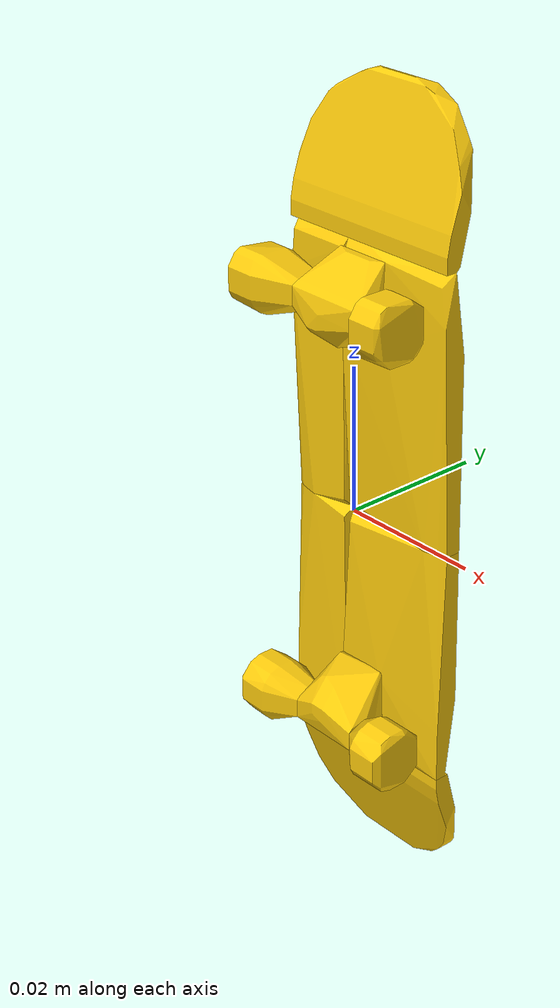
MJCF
<mujoco model="shapenet12-2">
  <asset>
    <mesh file="meshes/shapenet12-2/shapenet12-2_0.stl" name="shapenet12-2_0" scale="0.115 0.115 0.115"/>
    <mesh file="meshes/shapenet12-2/shapenet12-2_1.stl" name="shapenet12-2_1" scale="0.115 0.115 0.115"/>
    <mesh file="meshes/shapenet12-2/shapenet12-2_2.stl" name="shapenet12-2_2" scale="0.115 0.115 0.115"/>
    <mesh file="meshes/shapenet12-2/shapenet12-2_3.stl" name="shapenet12-2_3" scale="0.115 0.115 0.115"/>
    <mesh file="meshes/shapenet12-2/shapenet12-2_4.stl" name="shapenet12-2_4" scale="0.115 0.115 0.115"/>
    <mesh file="meshes/shapenet12-2/shapenet12-2_5.stl" name="shapenet12-2_5" scale="0.115 0.115 0.115"/>
    <mesh file="meshes/shapenet12-2/shapenet12-2_6.stl" name="shapenet12-2_6" scale="0.115 0.115 0.115"/>
    <mesh file="meshes/shapenet12-2/shapenet12-2_7.stl" name="shapenet12-2_7" scale="0.115 0.115 0.115"/>
    <mesh file="meshes/shapenet12-2/shapenet12-2_8.stl" name="shapenet12-2_8" scale="0.115 0.115 0.115"/>
    <mesh file="meshes/shapenet12-2/shapenet12-2_9.stl" name="shapenet12-2_9" scale="0.115 0.115 0.115"/>
    <mesh file="meshes/shapenet12-2/shapenet12-2_10.stl" name="shapenet12-2_10" scale="0.115 0.115 0.115"/>
    <mesh file="meshes/shapenet12-2/shapenet12-2_11.stl" name="shapenet12-2_11" scale="0.115 0.115 0.115"/>
  </asset>
  <worldbody>
    <body>
      <body name="collision">
        <geom pos="0 0 0" mesh="shapenet12-2_0" type="mesh" solimp="0.998 0.998 0.001" solref="0.001 1" density="100" friction="0.95 0.3 0.1" rgba="0.99 0.796 0.04 1" group="1" condim="4"/>
        <geom pos="0 0 0" mesh="shapenet12-2_1" type="mesh" solimp="0.998 0.998 0.001" solref="0.001 1" density="100" friction="0.95 0.3 0.1" rgba="0.99 0.796 0.04 1" group="1" condim="4"/>
        <geom pos="0 0 0" mesh="shapenet12-2_2" type="mesh" solimp="0.998 0.998 0.001" solref="0.001 1" density="100" friction="0.95 0.3 0.1" rgba="0.99 0.796 0.04 1" group="1" condim="4"/>
        <geom pos="0 0 0" mesh="shapenet12-2_3" type="mesh" solimp="0.998 0.998 0.001" solref="0.001 1" density="100" friction="0.95 0.3 0.1" rgba="0.99 0.796 0.04 1" group="1" condim="4"/>
        <geom pos="0 0 0" mesh="shapenet12-2_4" type="mesh" solimp="0.998 0.998 0.001" solref="0.001 1" density="100" friction="0.95 0.3 0.1" rgba="0.99 0.796 0.04 1" group="1" condim="4"/>
        <geom pos="0 0 0" mesh="shapenet12-2_5" type="mesh" solimp="0.998 0.998 0.001" solref="0.001 1" density="100" friction="0.95 0.3 0.1" rgba="0.99 0.796 0.04 1" group="1" condim="4"/>
        <geom pos="0 0 0" mesh="shapenet12-2_6" type="mesh" solimp="0.998 0.998 0.001" solref="0.001 1" density="100" friction="0.95 0.3 0.1" rgba="0.99 0.796 0.04 1" group="1" condim="4"/>
        <geom pos="0 0 0" mesh="shapenet12-2_7" type="mesh" solimp="0.998 0.998 0.001" solref="0.001 1" density="100" friction="0.95 0.3 0.1" rgba="0.99 0.796 0.04 1" group="1" condim="4"/>
        <geom pos="0 0 0" mesh="shapenet12-2_8" type="mesh" solimp="0.998 0.998 0.001" solref="0.001 1" density="100" friction="0.95 0.3 0.1" rgba="0.99 0.796 0.04 1" group="1" condim="4"/>
        <geom pos="0 0 0" mesh="shapenet12-2_9" type="mesh" solimp="0.998 0.998 0.001" solref="0.001 1" density="100" friction="0.95 0.3 0.1" rgba="0.99 0.796 0.04 1" group="1" condim="4"/>
        <geom pos="0 0 0" mesh="shapenet12-2_10" type="mesh" solimp="0.998 0.998 0.001" solref="0.001 1" density="100" friction="0.95 0.3 0.1" rgba="0.99 0.796 0.04 1" group="1" condim="4"/>
        <geom pos="0 0 0" mesh="shapenet12-2_11" type="mesh" solimp="0.998 0.998 0.001" solref="0.001 1" density="100" friction="0.95 0.3 0.1" rgba="0.99 0.796 0.04 1" group="1" condim="4"/>
      </body>
      <body name="visual">
        <geom pos="0 0 0" mesh="shapenet12-2_0" type="mesh" rgba="0.99 0.796 0.04 1" conaffinity="0" contype="0" group="0" mass="0.0001"/>
        <geom pos="0 0 0" mesh="shapenet12-2_1" type="mesh" rgba="0.99 0.796 0.04 1" conaffinity="0" contype="0" group="0" mass="0.0001"/>
        <geom pos="0 0 0" mesh="shapenet12-2_2" type="mesh" rgba="0.99 0.796 0.04 1" conaffinity="0" contype="0" group="0" mass="0.0001"/>
        <geom pos="0 0 0" mesh="shapenet12-2_3" type="mesh" rgba="0.99 0.796 0.04 1" conaffinity="0" contype="0" group="0" mass="0.0001"/>
        <geom pos="0 0 0" mesh="shapenet12-2_4" type="mesh" rgba="0.99 0.796 0.04 1" conaffinity="0" contype="0" group="0" mass="0.0001"/>
        <geom pos="0 0 0" mesh="shapenet12-2_5" type="mesh" rgba="0.99 0.796 0.04 1" conaffinity="0" contype="0" group="0" mass="0.0001"/>
        <geom pos="0 0 0" mesh="shapenet12-2_6" type="mesh" rgba="0.99 0.796 0.04 1" conaffinity="0" contype="0" group="0" mass="0.0001"/>
        <geom pos="0 0 0" mesh="shapenet12-2_7" type="mesh" rgba="0.99 0.796 0.04 1" conaffinity="0" contype="0" group="0" mass="0.0001"/>
        <geom pos="0 0 0" mesh="shapenet12-2_8" type="mesh" rgba="0.99 0.796 0.04 1" conaffinity="0" contype="0" group="0" mass="0.0001"/>
        <geom pos="0 0 0" mesh="shapenet12-2_9" type="mesh" rgba="0.99 0.796 0.04 1" conaffinity="0" contype="0" group="0" mass="0.0001"/>
        <geom pos="0 0 0" mesh="shapenet12-2_10" type="mesh" rgba="0.99 0.796 0.04 1" conaffinity="0" contype="0" group="0" mass="0.0001"/>
        <geom pos="0 0 0" mesh="shapenet12-2_11" type="mesh" rgba="0.99 0.796 0.04 1" conaffinity="0" contype="0" group="0" mass="0.0001"/>
      </body>
      <site rgba="0 0 0 0" size="0.005" pos="0 0 -0.06" name="bottom_site"/>
      <site rgba="0 0 0 0" size="0.005" pos="0 0 0.04" name="top_site"/>
      <site rgba="0 0 0 0" size="0.005" pos="0.025 0.025 0" name="horizontal_radius_site"/>
    </body>
  </worldbody>
</mujoco>
